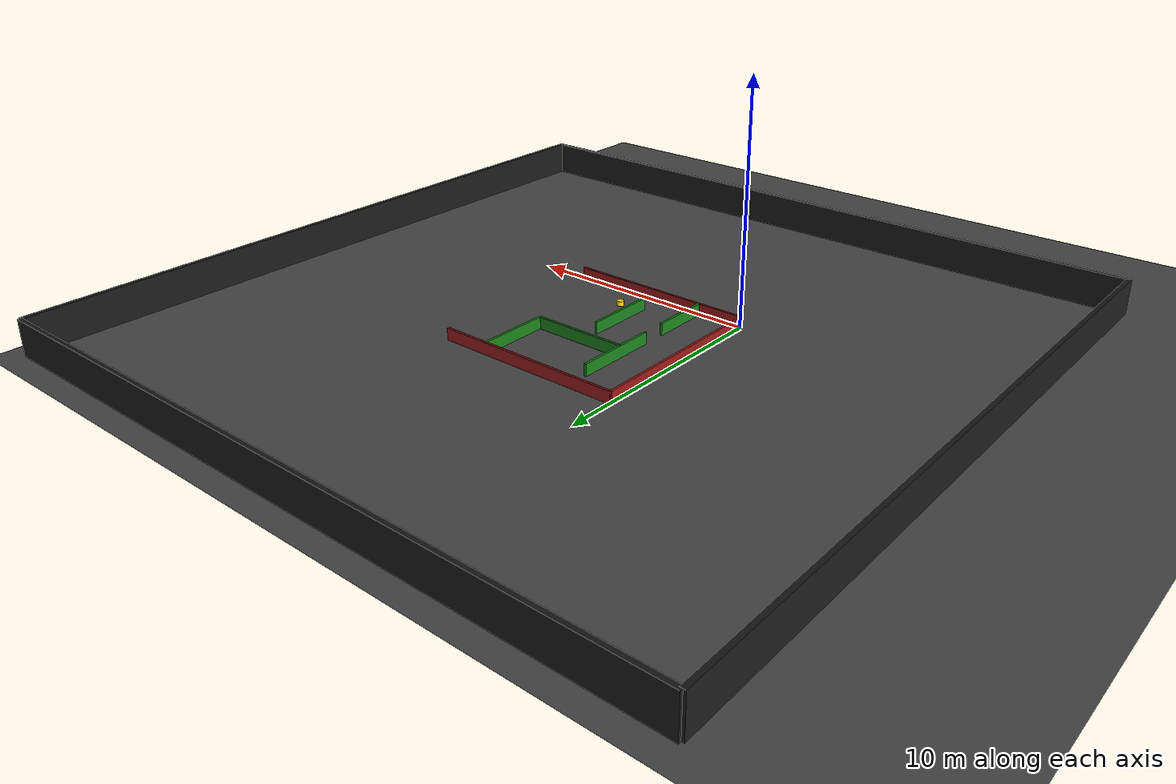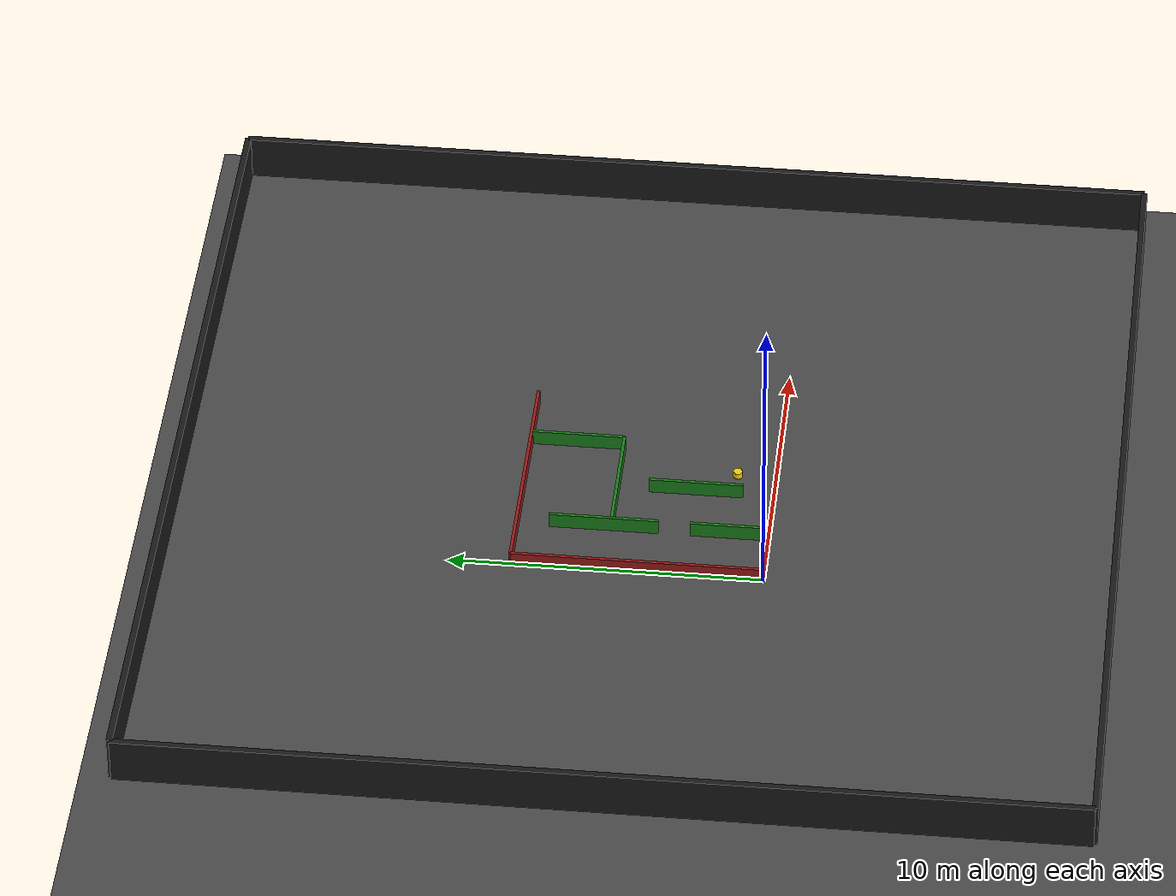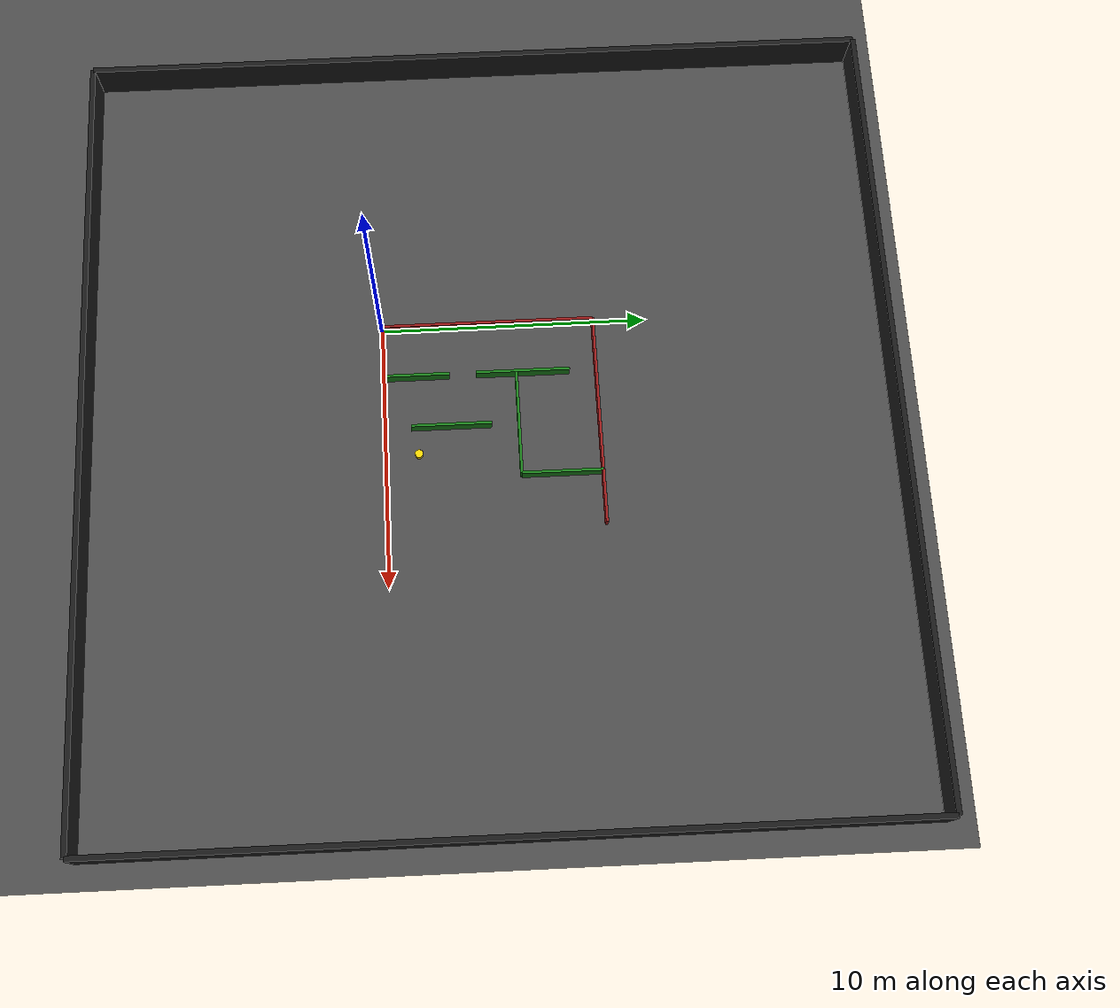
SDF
<?xml version="1.0" ?>
<sdf version="1.6">
  <world name="contained_maze_world">

    <include>
      <uri>model://sun</uri>
    </include>

    <physics type="ode">
      <real_time_update_rate>1000.0</real_time_update_rate>
      <max_step_size>0.001</max_step_size>
      <real_time_factor>1.0</real_time_factor>
    </physics>

    <model name="high_friction_ground">
      <static>true</static>
      <link name="link">
        <collision name="collision">
          <geometry>
            <plane>
              <normal>0 0 1</normal>
              <size>40 40</size>
            </plane>
          </geometry>
          <surface>
            <friction>
              <ode>
                <mu>100.0</mu>
                <mu2>100.0</mu2>
              </ode>
            </friction>
          </surface>
        </collision>
        <visual name="visual">
          <geometry>
            <plane>
              <normal>0 0 1</normal>
              <size>40 40</size>
            </plane>
          </geometry>
          <material>
            <ambient>0.2 0.2 0.2 1</ambient>
            <diffuse>0.3 0.3 0.3 1</diffuse>
            <specular>0.01 0.01 0.01 1</specular>
          </material>
        </visual>
      </link>
    </model>

    <model name="containment_west_wall">
      <static>true</static>
      <link name="link">
        <pose>-11.0 4.0 0.75 0 0 0</pose>
        <collision name="coll">
          <geometry><box><size>0.2 30.0 1.5</size></box></geometry>
        </collision>
        <visual name="vis">
          <geometry><box><size>0.2 30.0 1.5</size></box></geometry>
          <material><ambient>0.1 0.1 0.1 1</ambient><diffuse>0.1 0.1 0.1 1</diffuse></material>
        </visual>
      </link>
    </model>

    <model name="containment_east_wall">
      <static>true</static>
      <link name="link">
        <pose>19.0 4.0 0.75 0 0 0</pose>
        <collision name="coll">
          <geometry><box><size>0.2 30.0 1.5</size></box></geometry>
        </collision>
        <visual name="vis">
          <geometry><box><size>0.2 30.0 1.5</size></box></geometry>
          <material><ambient>0.1 0.1 0.1 1</ambient><diffuse>0.1 0.1 0.1 1</diffuse></material>
        </visual>
      </link>
    </model>

    <model name="containment_south_wall">
      <static>true</static>
      <link name="link">
        <pose>4.0 -11.0 0.75 0 0 0</pose>
        <collision name="coll">
          <geometry><box><size>30.0 0.2 1.5</size></box></geometry>
        </collision>
        <visual name="vis">
          <geometry><box><size>30.0 0.2 1.5</size></box></geometry>
          <material><ambient>0.1 0.1 0.1 1</ambient><diffuse>0.1 0.1 0.1 1</diffuse></material>
        </visual>
      </link>
    </model>

    <model name="containment_north_wall">
      <static>true</static>
      <link name="link">
        <pose>4.0 19.0 0.75 0 0 0</pose>
        <collision name="coll">
          <geometry><box><size>30.0 0.2 1.5</size></box></geometry>
        </collision>
        <visual name="vis">
          <geometry><box><size>30.0 0.2 1.5</size></box></geometry>
          <material><ambient>0.1 0.1 0.1 1</ambient><diffuse>0.1 0.1 0.1 1</diffuse></material>
        </visual>
      </link>
    </model>

    <model name="outer_left_wall">
      <static>true</static>
      <link name="link">
        <pose>0.0 4.0 0.25 0 0 0</pose>
        <collision name="coll">
          <geometry><box><size>0.1 8.0 0.5</size></box></geometry>
        </collision>
        <visual name="vis">
          <geometry><box><size>0.1 8.0 0.5</size></box></geometry>
          <material><ambient>0.6 0.1 0.1 1</ambient><diffuse>0.6 0.1 0.1 1</diffuse></material>
        </visual>
      </link>
    </model>

    <model name="outer_top_wall">
      <static>true</static>
      <link name="link">
        <pose>4.0 8.0 0.25 0 0 0</pose>
        <collision name="coll">
          <geometry><box><size>8.0 0.1 0.5</size></box></geometry>
        </collision>
        <visual name="vis">
          <geometry><box><size>8.0 0.1 0.5</size></box></geometry>
          <material><ambient>0.6 0.1 0.1 1</ambient><diffuse>0.6 0.1 0.1 1</diffuse></material>
        </visual>
      </link>
    </model>

    <model name="outer_bottom_wall">
      <static>true</static>
      <link name="link">
        <pose>4.0 0.0 0.25 0 0 0</pose>
        <collision name="coll">
          <geometry><box><size>8.0 0.1 0.5</size></box></geometry>
        </collision>
        <visual name="vis">
          <geometry><box><size>8.0 0.1 0.5</size></box></geometry>
          <material><ambient>0.6 0.1 0.1 1</ambient><diffuse>0.6 0.1 0.1 1</diffuse></material>
        </visual>
      </link>
    </model>

    <model name="inner_wall_1_bottom">
      <static>true</static>
      <link name="link">
        <pose>2.0 1.25 0.25 0 0 0</pose>
        <collision name="coll">
          <geometry><box><size>0.1 2.5 0.5</size></box></geometry>
        </collision>
        <visual name="vis">
          <geometry><box><size>0.1 2.5 0.5</size></box></geometry>
          <material><ambient>0.1 0.5 0.1 1</ambient><diffuse>0.1 0.5 0.1 1</diffuse></material>
        </visual>
      </link>
    </model>

    <model name="inner_wall_1_top">
      <static>true</static>
      <link name="link">
        <pose>2.0 5.25 0.25 0 0 0</pose>
        <collision name="coll">
          <geometry><box><size>0.1 3.5 0.5</size></box></geometry>
        </collision>
        <visual name="vis">
          <geometry><box><size>0.1 3.5 0.5</size></box></geometry>
          <material><ambient>0.1 0.5 0.1 1</ambient><diffuse>0.1 0.5 0.1 1</diffuse></material>
        </visual>
      </link>
    </model>

    <model name="inner_wall_2">
      <static>true</static>
      <link name="link">
        <pose>4.0 5.0 0.25 0 0 0</pose>
        <collision name="coll">
          <geometry><box><size>4.0 0.1 0.5</size></box></geometry>
        </collision>
        <visual name="vis">
          <geometry><box><size>4.0 0.1 0.5</size></box></geometry>
          <material><ambient>0.1 0.5 0.1 1</ambient><diffuse>0.1 0.5 0.1 1</diffuse></material>
        </visual>
      </link>
    </model>

    <model name="inner_wall_3">
      <static>true</static>
      <link name="link">
        <pose>4.0 2.5 0.25 0 0 0</pose>
        <collision name="coll">
          <geometry><box><size>0.1 3.0 0.5</size></box></geometry>
        </collision>
        <visual name="vis">
          <geometry><box><size>0.1 3.0 0.5</size></box></geometry>
          <material><ambient>0.1 0.5 0.1 1</ambient><diffuse>0.1 0.5 0.1 1</diffuse></material>
        </visual>
      </link>
    </model>

    <model name="inner_wall_4">
      <static>true</static>
      <link name="link">
        <pose>6.0 6.5 0.25 0 0 0</pose>
        <collision name="coll">
          <geometry><box><size>0.1 3.0 0.5</size></box></geometry>
        </collision>
        <visual name="vis">
          <geometry><box><size>0.1 3.0 0.5</size></box></geometry>
          <material><ambient>0.1 0.5 0.1 1</ambient><diffuse>0.1 0.5 0.1 1</diffuse></material>
        </visual>
      </link>
    </model>

    <model name="reward_block">
      <static>true</static>
      <pose>5.0 1.25 0.1 0 0 0</pose>
      <link name="link">
        <collision name="collision">
          <geometry><cylinder><radius>0.15</radius><length>0.2</length></cylinder></geometry>
        </collision>
        <visual name="visual">
          <geometry><cylinder><radius>0.15</radius><length>0.2</length></cylinder></geometry>
          <material>
            <ambient>1.0 0.84 0.0 1</ambient>
            <diffuse>1.0 0.84 0.0 1</diffuse>
            <emissive>1.0 0.6 0.0 1</emissive>
          </material>
        </visual>
      </link>
    </model>

  </world>
</sdf>
